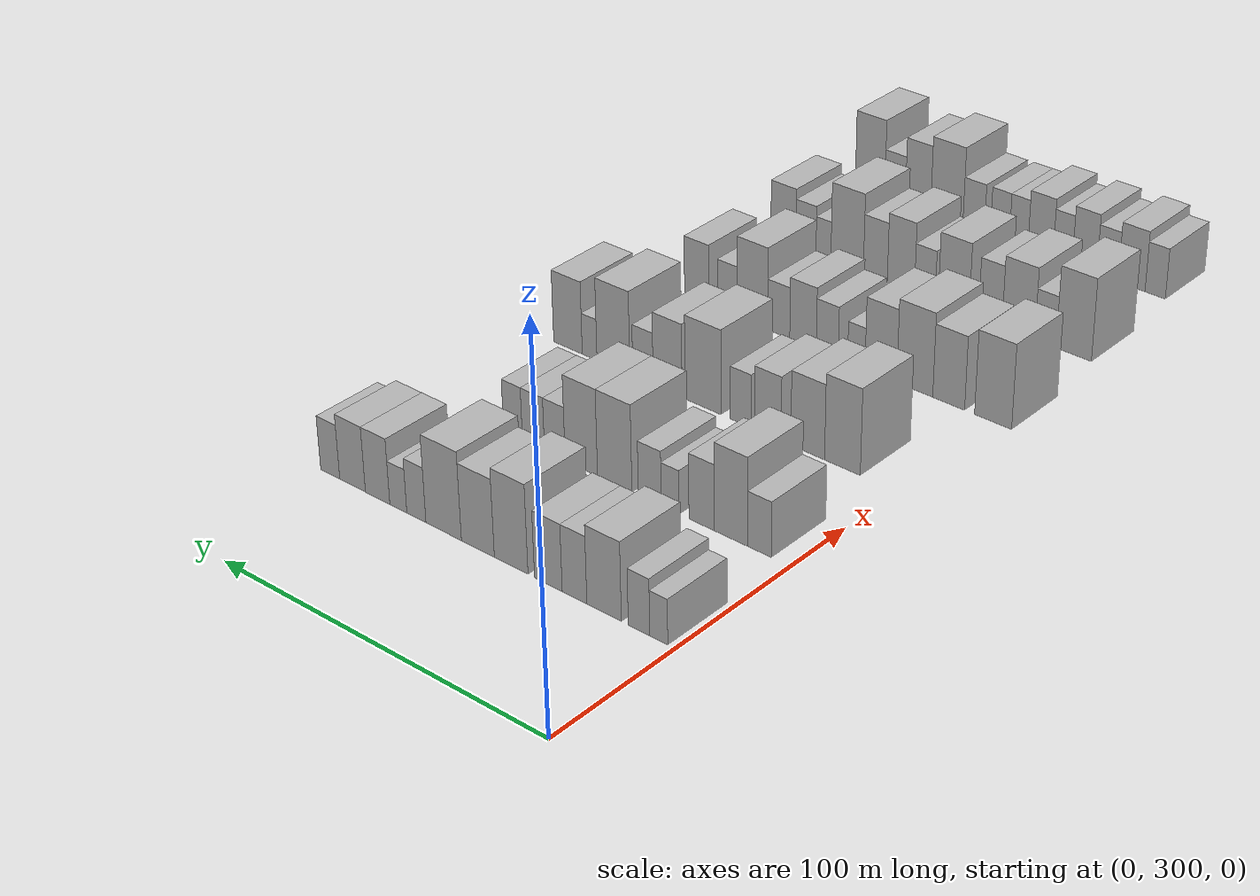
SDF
<sdf version="1.6">
 <world name="default">
  <model name="building_101">
   <static>1</static>
   <pose>50.0000 304.7774 0 0.000000 0.000000 0.000000</pose>
   <link name="link">
    <pose>0 0 6.00 0 0 0</pose>
    <collision name="collision"><geometry><box><size>20.0000 5.1598 12.0000</size></box></geometry></collision>
    <visual name="visual">
     <cast_shadows>0</cast_shadows>
     <geometry><box><size>20.0000 5.1598 12.0000</size></box></geometry>
     <material>
      <script>
       <uri>model://HANNAS_wall/materials/scripts</uri>
       <uri>model://HANNAS_wall/materials/textures</uri>
       <name>vrc/HANNAS_wall</name>
      </script>
     </material>
    </visual>
   </link>
  </model>
  <model name="building_102">
   <static>1</static>
   <pose>50.0000 310.4714 0 0.000000 0.000000 0.000000</pose>
   <link name="link">
    <pose>0 0 7.50 0 0 0</pose>
    <collision name="collision"><geometry><box><size>20.0000 6.2281 15.0000</size></box></geometry></collision>
    <visual name="visual">
     <cast_shadows>0</cast_shadows>
     <geometry><box><size>20.0000 6.2281 15.0000</size></box></geometry>
     <material>
      <script>
       <uri>model://HANNAS_wall/materials/scripts</uri>
       <uri>model://HANNAS_wall/materials/textures</uri>
       <name>vrc/HANNAS_wall</name>
      </script>
     </material>
    </visual>
   </link>
  </model>
  <model name="building_103">
   <static>1</static>
   <pose>50.0000 320.6744 0 0.000000 0.000000 0.000000</pose>
   <link name="link">
    <pose>0 0 10.50 0 0 0</pose>
    <collision name="collision"><geometry><box><size>20.0000 10.1779 21.0000</size></box></geometry></collision>
    <visual name="visual">
     <cast_shadows>0</cast_shadows>
     <geometry><box><size>20.0000 10.1779 21.0000</size></box></geometry>
     <material>
      <script>
       <uri>model://HANNAS_wall/materials/scripts</uri>
       <uri>model://HANNAS_wall/materials/textures</uri>
       <name>vrc/HANNAS_wall</name>
      </script>
     </material>
    </visual>
   </link>
  </model>
  <model name="building_104">
   <static>1</static>
   <pose>50.0000 329.4611 0 0.000000 0.000000 0.000000</pose>
   <link name="link">
    <pose>0 0 9.00 0 0 0</pose>
    <collision name="collision"><geometry><box><size>20.0000 7.3956 18.0000</size></box></geometry></collision>
    <visual name="visual">
     <cast_shadows>0</cast_shadows>
     <geometry><box><size>20.0000 7.3956 18.0000</size></box></geometry>
     <material>
      <script>
       <uri>model://HANNAS_wall/materials/scripts</uri>
       <uri>model://HANNAS_wall/materials/textures</uri>
       <name>vrc/HANNAS_wall</name>
      </script>
     </material>
    </visual>
   </link>
  </model>
  <model name="building_105">
   <static>1</static>
   <pose>50.0000 337.3727 0 0.000000 0.000000 0.000000</pose>
   <link name="link">
    <pose>0 0 9.00 0 0 0</pose>
    <collision name="collision"><geometry><box><size>20.0000 8.4275 18.0000</size></box></geometry></collision>
    <visual name="visual">
     <cast_shadows>0</cast_shadows>
     <geometry><box><size>20.0000 8.4275 18.0000</size></box></geometry>
     <material>
      <script>
       <uri>model://HANNAS_wall/materials/scripts</uri>
       <uri>model://HANNAS_wall/materials/textures</uri>
       <name>vrc/HANNAS_wall</name>
      </script>
     </material>
    </visual>
   </link>
  </model>
  <model name="building_106">
   <static>1</static>
   <pose>50.0000 348.8164 0 0.000000 0.000000 0.000000</pose>
   <link name="link">
    <pose>0 0 12.00 0 0 0</pose>
    <collision name="collision"><geometry><box><size>20.0000 10.4598 24.0000</size></box></geometry></collision>
    <visual name="visual">
     <cast_shadows>0</cast_shadows>
     <geometry><box><size>20.0000 10.4598 24.0000</size></box></geometry>
     <material>
      <script>
       <uri>model://HANNAS_wall/materials/scripts</uri>
       <uri>model://HANNAS_wall/materials/textures</uri>
       <name>vrc/HANNAS_wall</name>
      </script>
     </material>
    </visual>
   </link>
  </model>
  <model name="building_107">
   <static>1</static>
   <pose>50.0000 359.2651 0 0.000000 0.000000 0.000000</pose>
   <link name="link">
    <pose>0 0 10.50 0 0 0</pose>
    <collision name="collision"><geometry><box><size>20.0000 10.4377 21.0000</size></box></geometry></collision>
    <visual name="visual">
     <cast_shadows>0</cast_shadows>
     <geometry><box><size>20.0000 10.4377 21.0000</size></box></geometry>
     <material>
      <script>
       <uri>model://HANNAS_wall/materials/scripts</uri>
       <uri>model://HANNAS_wall/materials/textures</uri>
       <name>vrc/HANNAS_wall</name>
      </script>
     </material>
    </visual>
   </link>
  </model>
  <model name="building_108">
   <static>1</static>
   <pose>50.0000 370.2197 0 0.000000 0.000000 0.000000</pose>
   <link name="link">
    <pose>0 0 12.00 0 0 0</pose>
    <collision name="collision"><geometry><box><size>20.0000 11.4715 24.0000</size></box></geometry></collision>
    <visual name="visual">
     <cast_shadows>0</cast_shadows>
     <geometry><box><size>20.0000 11.4715 24.0000</size></box></geometry>
     <material>
      <script>
       <uri>model://HANNAS_wall/materials/scripts</uri>
       <uri>model://HANNAS_wall/materials/textures</uri>
       <name>vrc/HANNAS_wall</name>
      </script>
     </material>
    </visual>
   </link>
  </model>
  <model name="building_109">
   <static>1</static>
   <pose>50.0000 379.0863 0 0.000000 0.000000 0.000000</pose>
   <link name="link">
    <pose>0 0 7.50 0 0 0</pose>
    <collision name="collision"><geometry><box><size>20.0000 6.2616 15.0000</size></box></geometry></collision>
    <visual name="visual">
     <cast_shadows>0</cast_shadows>
     <geometry><box><size>20.0000 6.2616 15.0000</size></box></geometry>
     <material>
      <script>
       <uri>model://HANNAS_wall/materials/scripts</uri>
       <uri>model://HANNAS_wall/materials/textures</uri>
       <name>vrc/HANNAS_wall</name>
      </script>
     </material>
    </visual>
   </link>
  </model>
  <model name="building_110">
   <static>1</static>
   <pose>50.0000 385.0324 0 0.000000 0.000000 0.000000</pose>
   <link name="link">
    <pose>0 0 6.00 0 0 0</pose>
    <collision name="collision"><geometry><box><size>20.0000 5.6307 12.0000</size></box></geometry></collision>
    <visual name="visual">
     <cast_shadows>0</cast_shadows>
     <geometry><box><size>20.0000 5.6307 12.0000</size></box></geometry>
     <material>
      <script>
       <uri>model://HANNAS_wall/materials/scripts</uri>
       <uri>model://HANNAS_wall/materials/textures</uri>
       <name>vrc/HANNAS_wall</name>
      </script>
     </material>
    </visual>
   </link>
  </model>
  <model name="building_111">
   <static>1</static>
   <pose>50.0000 391.9464 0 0.000000 0.000000 0.000000</pose>
   <link name="link">
    <pose>0 0 9.00 0 0 0</pose>
    <collision name="collision"><geometry><box><size>20.0000 8.1974 18.0000</size></box></geometry></collision>
    <visual name="visual">
     <cast_shadows>0</cast_shadows>
     <geometry><box><size>20.0000 8.1974 18.0000</size></box></geometry>
     <material>
      <script>
       <uri>model://HANNAS_wall/materials/scripts</uri>
       <uri>model://HANNAS_wall/materials/textures</uri>
       <name>vrc/HANNAS_wall</name>
      </script>
     </material>
    </visual>
   </link>
  </model>
  <model name="building_112">
   <static>1</static>
   <pose>50.0000 400.4162 0 0.000000 0.000000 0.000000</pose>
   <link name="link">
    <pose>0 0 9.00 0 0 0</pose>
    <collision name="collision"><geometry><box><size>20.0000 8.7420 18.0000</size></box></geometry></collision>
    <visual name="visual">
     <cast_shadows>0</cast_shadows>
     <geometry><box><size>20.0000 8.7420 18.0000</size></box></geometry>
     <material>
      <script>
       <uri>model://HANNAS_wall/materials/scripts</uri>
       <uri>model://HANNAS_wall/materials/textures</uri>
       <name>vrc/HANNAS_wall</name>
      </script>
     </material>
    </visual>
   </link>
  </model>
  <model name="building_113">
   <static>1</static>
   <pose>50.0000 408.0603 0 0.000000 0.000000 0.000000</pose>
   <link name="link">
    <pose>0 0 7.50 0 0 0</pose>
    <collision name="collision"><geometry><box><size>20.0000 6.5462 15.0000</size></box></geometry></collision>
    <visual name="visual">
     <cast_shadows>0</cast_shadows>
     <geometry><box><size>20.0000 6.5462 15.0000</size></box></geometry>
     <material>
      <script>
       <uri>model://HANNAS_wall/materials/scripts</uri>
       <uri>model://HANNAS_wall/materials/textures</uri>
       <name>vrc/HANNAS_wall</name>
      </script>
     </material>
    </visual>
   </link>
  </model>
  <model name="building_247">
   <static>1</static>
   <pose>90.0000 309.2190 0 0.000000 0.000000 0.000000</pose>
   <link name="link">
    <pose>0 0 7.50 0 0 0</pose>
    <collision name="collision"><geometry><box><size>20.0000 6.9966 15.0000</size></box></geometry></collision>
    <visual name="visual">
     <cast_shadows>0</cast_shadows>
     <geometry><box><size>20.0000 6.9966 15.0000</size></box></geometry>
     <material>
      <script>
       <uri>model://HANNAS_wall/materials/scripts</uri>
       <uri>model://HANNAS_wall/materials/textures</uri>
       <name>vrc/HANNAS_wall</name>
      </script>
     </material>
    </visual>
   </link>
  </model>
  <model name="building_248">
   <static>1</static>
   <pose>90.0000 317.6455 0 0.000000 0.000000 0.000000</pose>
   <link name="link">
    <pose>0 0 12.00 0 0 0</pose>
    <collision name="collision"><geometry><box><size>20.0000 9.8564 24.0000</size></box></geometry></collision>
    <visual name="visual">
     <cast_shadows>0</cast_shadows>
     <geometry><box><size>20.0000 9.8564 24.0000</size></box></geometry>
     <material>
      <script>
       <uri>model://HANNAS_wall/materials/scripts</uri>
       <uri>model://HANNAS_wall/materials/textures</uri>
       <name>vrc/HANNAS_wall</name>
      </script>
     </material>
    </visual>
   </link>
  </model>
  <model name="building_249">
   <static>1</static>
   <pose>90.0000 326.4038 0 0.000000 0.000000 0.000000</pose>
   <link name="link">
    <pose>0 0 9.00 0 0 0</pose>
    <collision name="collision"><geometry><box><size>20.0000 7.6602 18.0000</size></box></geometry></collision>
    <visual name="visual">
     <cast_shadows>0</cast_shadows>
     <geometry><box><size>20.0000 7.6602 18.0000</size></box></geometry>
     <material>
      <script>
       <uri>model://HANNAS_wall/materials/scripts</uri>
       <uri>model://HANNAS_wall/materials/textures</uri>
       <name>vrc/HANNAS_wall</name>
      </script>
     </material>
    </visual>
   </link>
  </model>
  <model name="building_250">
   <static>1</static>
   <pose>90.0000 335.9796 0 0.000000 0.000000 0.000000</pose>
   <link name="link">
    <pose>0 0 6.00 0 0 0</pose>
    <collision name="collision"><geometry><box><size>20.0000 5.4913 12.0000</size></box></geometry></collision>
    <visual name="visual">
     <cast_shadows>0</cast_shadows>
     <geometry><box><size>20.0000 5.4913 12.0000</size></box></geometry>
     <material>
      <script>
       <uri>model://HANNAS_wall/materials/scripts</uri>
       <uri>model://HANNAS_wall/materials/textures</uri>
       <name>vrc/HANNAS_wall</name>
      </script>
     </material>
    </visual>
   </link>
  </model>
  <model name="building_251">
   <static>1</static>
   <pose>90.0000 342.2783 0 0.000000 0.000000 0.000000</pose>
   <link name="link">
    <pose>0 0 7.50 0 0 0</pose>
    <collision name="collision"><geometry><box><size>20.0000 7.1061 15.0000</size></box></geometry></collision>
    <visual name="visual">
     <cast_shadows>0</cast_shadows>
     <geometry><box><size>20.0000 7.1061 15.0000</size></box></geometry>
     <material>
      <script>
       <uri>model://HANNAS_wall/materials/scripts</uri>
       <uri>model://HANNAS_wall/materials/textures</uri>
       <name>vrc/HANNAS_wall</name>
      </script>
     </material>
    </visual>
   </link>
  </model>
  <model name="building_252">
   <static>1</static>
   <pose>90.0000 353.2754 0 0.000000 0.000000 0.000000</pose>
   <link name="link">
    <pose>0 0 12.00 0 0 0</pose>
    <collision name="collision"><geometry><box><size>20.0000 10.8881 24.0000</size></box></geometry></collision>
    <visual name="visual">
     <cast_shadows>0</cast_shadows>
     <geometry><box><size>20.0000 10.8881 24.0000</size></box></geometry>
     <material>
      <script>
       <uri>model://HANNAS_wall/materials/scripts</uri>
       <uri>model://HANNAS_wall/materials/textures</uri>
       <name>vrc/HANNAS_wall</name>
      </script>
     </material>
    </visual>
   </link>
  </model>
  <model name="building_253">
   <static>1</static>
   <pose>90.0000 363.9347 0 0.000000 0.000000 0.000000</pose>
   <link name="link">
    <pose>0 0 12.00 0 0 0</pose>
    <collision name="collision"><geometry><box><size>20.0000 10.4305 24.0000</size></box></geometry></collision>
    <visual name="visual">
     <cast_shadows>0</cast_shadows>
     <geometry><box><size>20.0000 10.4305 24.0000</size></box></geometry>
     <material>
      <script>
       <uri>model://HANNAS_wall/materials/scripts</uri>
       <uri>model://HANNAS_wall/materials/textures</uri>
       <name>vrc/HANNAS_wall</name>
      </script>
     </material>
    </visual>
   </link>
  </model>
  <model name="building_254">
   <static>1</static>
   <pose>90.0000 372.5247 0 0.000000 0.000000 0.000000</pose>
   <link name="link">
    <pose>0 0 7.50 0 0 0</pose>
    <collision name="collision"><geometry><box><size>20.0000 6.7496 15.0000</size></box></geometry></collision>
    <visual name="visual">
     <cast_shadows>0</cast_shadows>
     <geometry><box><size>20.0000 6.7496 15.0000</size></box></geometry>
     <material>
      <script>
       <uri>model://HANNAS_wall/materials/scripts</uri>
       <uri>model://HANNAS_wall/materials/textures</uri>
       <name>vrc/HANNAS_wall</name>
      </script>
     </material>
    </visual>
   </link>
  </model>
  <model name="building_255">
   <static>1</static>
   <pose>90.0000 379.5529 0 0.000000 0.000000 0.000000</pose>
   <link name="link">
    <pose>0 0 7.50 0 0 0</pose>
    <collision name="collision"><geometry><box><size>20.0000 7.3069 15.0000</size></box></geometry></collision>
    <visual name="visual">
     <cast_shadows>0</cast_shadows>
     <geometry><box><size>20.0000 7.3069 15.0000</size></box></geometry>
     <material>
      <script>
       <uri>model://HANNAS_wall/materials/scripts</uri>
       <uri>model://HANNAS_wall/materials/textures</uri>
       <name>vrc/HANNAS_wall</name>
      </script>
     </material>
    </visual>
   </link>
  </model>
  <model name="building_256">
   <static>1</static>
   <pose>90.0000 386.3377 0 0.000000 0.000000 0.000000</pose>
   <link name="link">
    <pose>0 0 7.50 0 0 0</pose>
    <collision name="collision"><geometry><box><size>20.0000 6.2625 15.0000</size></box></geometry></collision>
    <visual name="visual">
     <cast_shadows>0</cast_shadows>
     <geometry><box><size>20.0000 6.2625 15.0000</size></box></geometry>
     <material>
      <script>
       <uri>model://HANNAS_wall/materials/scripts</uri>
       <uri>model://HANNAS_wall/materials/textures</uri>
       <name>vrc/HANNAS_wall</name>
      </script>
     </material>
    </visual>
   </link>
  </model>
  <model name="building_383">
   <static>1</static>
   <pose>130.0000 316.2527 0 0.000000 0.000000 0.000000</pose>
   <link name="link">
    <pose>0 0 12.00 0 0 0</pose>
    <collision name="collision"><geometry><box><size>20.0000 10.7539 24.0000</size></box></geometry></collision>
    <visual name="visual">
     <cast_shadows>0</cast_shadows>
     <geometry><box><size>20.0000 10.7539 24.0000</size></box></geometry>
     <material>
      <script>
       <uri>model://HANNAS_wall/materials/scripts</uri>
       <uri>model://HANNAS_wall/materials/textures</uri>
       <name>vrc/HANNAS_wall</name>
      </script>
     </material>
    </visual>
   </link>
  </model>
  <model name="building_384">
   <static>1</static>
   <pose>130.0000 326.7931 0 0.000000 0.000000 0.000000</pose>
   <link name="link">
    <pose>0 0 10.50 0 0 0</pose>
    <collision name="collision"><geometry><box><size>20.0000 10.3268 21.0000</size></box></geometry></collision>
    <visual name="visual">
     <cast_shadows>0</cast_shadows>
     <geometry><box><size>20.0000 10.3268 21.0000</size></box></geometry>
     <material>
      <script>
       <uri>model://HANNAS_wall/materials/scripts</uri>
       <uri>model://HANNAS_wall/materials/textures</uri>
       <name>vrc/HANNAS_wall</name>
      </script>
     </material>
    </visual>
   </link>
  </model>
  <model name="building_385">
   <static>1</static>
   <pose>130.0000 339.1245 0 0.000000 0.000000 0.000000</pose>
   <link name="link">
    <pose>0 0 9.00 0 0 0</pose>
    <collision name="collision"><geometry><box><size>20.0000 8.3360 18.0000</size></box></geometry></collision>
    <visual name="visual">
     <cast_shadows>0</cast_shadows>
     <geometry><box><size>20.0000 8.3360 18.0000</size></box></geometry>
     <material>
      <script>
       <uri>model://HANNAS_wall/materials/scripts</uri>
       <uri>model://HANNAS_wall/materials/textures</uri>
       <name>vrc/HANNAS_wall</name>
      </script>
     </material>
    </visual>
   </link>
  </model>
  <model name="building_386">
   <static>1</static>
   <pose>130.0000 347.6137 0 0.000000 0.000000 0.000000</pose>
   <link name="link">
    <pose>0 0 7.50 0 0 0</pose>
    <collision name="collision"><geometry><box><size>20.0000 6.6423 15.0000</size></box></geometry></collision>
    <visual name="visual">
     <cast_shadows>0</cast_shadows>
     <geometry><box><size>20.0000 6.6423 15.0000</size></box></geometry>
     <material>
      <script>
       <uri>model://HANNAS_wall/materials/scripts</uri>
       <uri>model://HANNAS_wall/materials/textures</uri>
       <name>vrc/HANNAS_wall</name>
      </script>
     </material>
    </visual>
   </link>
  </model>
  <model name="building_387">
   <static>1</static>
   <pose>130.0000 359.7267 0 0.000000 0.000000 0.000000</pose>
   <link name="link">
    <pose>0 0 12.00 0 0 0</pose>
    <collision name="collision"><geometry><box><size>20.0000 11.5838 24.0000</size></box></geometry></collision>
    <visual name="visual">
     <cast_shadows>0</cast_shadows>
     <geometry><box><size>20.0000 11.5838 24.0000</size></box></geometry>
     <material>
      <script>
       <uri>model://HANNAS_wall/materials/scripts</uri>
       <uri>model://HANNAS_wall/materials/textures</uri>
       <name>vrc/HANNAS_wall</name>
      </script>
     </material>
    </visual>
   </link>
  </model>
  <model name="building_388">
   <static>1</static>
   <pose>130.0000 371.2873 0 0.000000 0.000000 0.000000</pose>
   <link name="link">
    <pose>0 0 10.50 0 0 0</pose>
    <collision name="collision"><geometry><box><size>20.0000 9.5373 21.0000</size></box></geometry></collision>
    <visual name="visual">
     <cast_shadows>0</cast_shadows>
     <geometry><box><size>20.0000 9.5373 21.0000</size></box></geometry>
     <material>
      <script>
       <uri>model://HANNAS_wall/materials/scripts</uri>
       <uri>model://HANNAS_wall/materials/textures</uri>
       <name>vrc/HANNAS_wall</name>
      </script>
     </material>
    </visual>
   </link>
  </model>
  <model name="building_389">
   <static>1</static>
   <pose>130.0000 379.4448 0 0.000000 0.000000 0.000000</pose>
   <link name="link">
    <pose>0 0 7.50 0 0 0</pose>
    <collision name="collision"><geometry><box><size>20.0000 6.7777 15.0000</size></box></geometry></collision>
    <visual name="visual">
     <cast_shadows>0</cast_shadows>
     <geometry><box><size>20.0000 6.7777 15.0000</size></box></geometry>
     <material>
      <script>
       <uri>model://HANNAS_wall/materials/scripts</uri>
       <uri>model://HANNAS_wall/materials/textures</uri>
       <name>vrc/HANNAS_wall</name>
      </script>
     </material>
    </visual>
   </link>
  </model>
  <model name="building_390">
   <static>1</static>
   <pose>130.0000 389.4282 0 0.000000 0.000000 0.000000</pose>
   <link name="link">
    <pose>0 0 12.00 0 0 0</pose>
    <collision name="collision"><geometry><box><size>20.0000 11.1891 24.0000</size></box></geometry></collision>
    <visual name="visual">
     <cast_shadows>0</cast_shadows>
     <geometry><box><size>20.0000 11.1891 24.0000</size></box></geometry>
     <material>
      <script>
       <uri>model://HANNAS_wall/materials/scripts</uri>
       <uri>model://HANNAS_wall/materials/textures</uri>
       <name>vrc/HANNAS_wall</name>
      </script>
     </material>
    </visual>
   </link>
  </model>
  <model name="building_391">
   <static>1</static>
   <pose>130.0000 397.5578 0 0.000000 0.000000 0.000000</pose>
   <link name="link">
    <pose>0 0 6.00 0 0 0</pose>
    <collision name="collision"><geometry><box><size>20.0000 5.0701 12.0000</size></box></geometry></collision>
    <visual name="visual">
     <cast_shadows>0</cast_shadows>
     <geometry><box><size>20.0000 5.0701 12.0000</size></box></geometry>
     <material>
      <script>
       <uri>model://HANNAS_wall/materials/scripts</uri>
       <uri>model://HANNAS_wall/materials/textures</uri>
       <name>vrc/HANNAS_wall</name>
      </script>
     </material>
    </visual>
   </link>
  </model>
  <model name="building_392">
   <static>1</static>
   <pose>130.0000 405.0522 0 0.000000 0.000000 0.000000</pose>
   <link name="link">
    <pose>0 0 10.50 0 0 0</pose>
    <collision name="collision"><geometry><box><size>20.0000 9.9187 21.0000</size></box></geometry></collision>
    <visual name="visual">
     <cast_shadows>0</cast_shadows>
     <geometry><box><size>20.0000 9.9187 21.0000</size></box></geometry>
     <material>
      <script>
       <uri>model://HANNAS_wall/materials/scripts</uri>
       <uri>model://HANNAS_wall/materials/textures</uri>
       <name>vrc/HANNAS_wall</name>
      </script>
     </material>
    </visual>
   </link>
  </model>
  <model name="building_515">
   <static>1</static>
   <pose>170.0000 300.4382 0 0.000000 0.000000 0.000000</pose>
   <link name="link">
    <pose>0 0 12.00 0 0 0</pose>
    <collision name="collision"><geometry><box><size>20.0000 11.0217 24.0000</size></box></geometry></collision>
    <visual name="visual">
     <cast_shadows>0</cast_shadows>
     <geometry><box><size>20.0000 11.0217 24.0000</size></box></geometry>
     <material>
      <script>
       <uri>model://HANNAS_wall/materials/scripts</uri>
       <uri>model://HANNAS_wall/materials/textures</uri>
       <name>vrc/HANNAS_wall</name>
      </script>
     </material>
    </visual>
   </link>
  </model>
  <model name="building_516">
   <static>1</static>
   <pose>170.0000 313.7992 0 0.000000 0.000000 0.000000</pose>
   <link name="link">
    <pose>0 0 10.50 0 0 0</pose>
    <collision name="collision"><geometry><box><size>20.0000 9.7004 21.0000</size></box></geometry></collision>
    <visual name="visual">
     <cast_shadows>0</cast_shadows>
     <geometry><box><size>20.0000 9.7004 21.0000</size></box></geometry>
     <material>
      <script>
       <uri>model://HANNAS_wall/materials/scripts</uri>
       <uri>model://HANNAS_wall/materials/textures</uri>
       <name>vrc/HANNAS_wall</name>
      </script>
     </material>
    </visual>
   </link>
  </model>
  <model name="building_517">
   <static>1</static>
   <pose>170.0000 324.2202 0 0.000000 0.000000 0.000000</pose>
   <link name="link">
    <pose>0 0 12.00 0 0 0</pose>
    <collision name="collision"><geometry><box><size>20.0000 11.1415 24.0000</size></box></geometry></collision>
    <visual name="visual">
     <cast_shadows>0</cast_shadows>
     <geometry><box><size>20.0000 11.1415 24.0000</size></box></geometry>
     <material>
      <script>
       <uri>model://HANNAS_wall/materials/scripts</uri>
       <uri>model://HANNAS_wall/materials/textures</uri>
       <name>vrc/HANNAS_wall</name>
      </script>
     </material>
    </visual>
   </link>
  </model>
  <model name="building_518">
   <static>1</static>
   <pose>170.0000 334.7910 0 0.000000 0.000000 0.000000</pose>
   <link name="link">
    <pose>0 0 10.50 0 0 0</pose>
    <collision name="collision"><geometry><box><size>20.0000 10.0001 21.0000</size></box></geometry></collision>
    <visual name="visual">
     <cast_shadows>0</cast_shadows>
     <geometry><box><size>20.0000 10.0001 21.0000</size></box></geometry>
     <material>
      <script>
       <uri>model://HANNAS_wall/materials/scripts</uri>
       <uri>model://HANNAS_wall/materials/textures</uri>
       <name>vrc/HANNAS_wall</name>
      </script>
     </material>
    </visual>
   </link>
  </model>
  <model name="building_519">
   <static>1</static>
   <pose>170.0000 342.5634 0 0.000000 0.000000 0.000000</pose>
   <link name="link">
    <pose>0 0 6.00 0 0 0</pose>
    <collision name="collision"><geometry><box><size>20.0000 5.5448 12.0000</size></box></geometry></collision>
    <visual name="visual">
     <cast_shadows>0</cast_shadows>
     <geometry><box><size>20.0000 5.5448 12.0000</size></box></geometry>
     <material>
      <script>
       <uri>model://HANNAS_wall/materials/scripts</uri>
       <uri>model://HANNAS_wall/materials/textures</uri>
       <name>vrc/HANNAS_wall</name>
      </script>
     </material>
    </visual>
   </link>
  </model>
  <model name="building_520">
   <static>1</static>
   <pose>170.0000 351.8970 0 0.000000 0.000000 0.000000</pose>
   <link name="link">
    <pose>0 0 7.50 0 0 0</pose>
    <collision name="collision"><geometry><box><size>20.0000 7.1225 15.0000</size></box></geometry></collision>
    <visual name="visual">
     <cast_shadows>0</cast_shadows>
     <geometry><box><size>20.0000 7.1225 15.0000</size></box></geometry>
     <material>
      <script>
       <uri>model://HANNAS_wall/materials/scripts</uri>
       <uri>model://HANNAS_wall/materials/textures</uri>
       <name>vrc/HANNAS_wall</name>
      </script>
     </material>
    </visual>
   </link>
  </model>
  <model name="building_521">
   <static>1</static>
   <pose>170.0000 359.7985 0 0.000000 0.000000 0.000000</pose>
   <link name="link">
    <pose>0 0 9.00 0 0 0</pose>
    <collision name="collision"><geometry><box><size>20.0000 8.6806 18.0000</size></box></geometry></collision>
    <visual name="visual">
     <cast_shadows>0</cast_shadows>
     <geometry><box><size>20.0000 8.6806 18.0000</size></box></geometry>
     <material>
      <script>
       <uri>model://HANNAS_wall/materials/scripts</uri>
       <uri>model://HANNAS_wall/materials/textures</uri>
       <name>vrc/HANNAS_wall</name>
      </script>
     </material>
    </visual>
   </link>
  </model>
  <model name="building_522">
   <static>1</static>
   <pose>170.0000 367.8183 0 0.000000 0.000000 0.000000</pose>
   <link name="link">
    <pose>0 0 7.50 0 0 0</pose>
    <collision name="collision"><geometry><box><size>20.0000 7.3589 15.0000</size></box></geometry></collision>
    <visual name="visual">
     <cast_shadows>0</cast_shadows>
     <geometry><box><size>20.0000 7.3589 15.0000</size></box></geometry>
     <material>
      <script>
       <uri>model://HANNAS_wall/materials/scripts</uri>
       <uri>model://HANNAS_wall/materials/textures</uri>
       <name>vrc/HANNAS_wall</name>
      </script>
     </material>
    </visual>
   </link>
  </model>
  <model name="building_523">
   <static>1</static>
   <pose>170.0000 376.5930 0 0.000000 0.000000 0.000000</pose>
   <link name="link">
    <pose>0 0 12.00 0 0 0</pose>
    <collision name="collision"><geometry><box><size>20.0000 10.1907 24.0000</size></box></geometry></collision>
    <visual name="visual">
     <cast_shadows>0</cast_shadows>
     <geometry><box><size>20.0000 10.1907 24.0000</size></box></geometry>
     <material>
      <script>
       <uri>model://HANNAS_wall/materials/scripts</uri>
       <uri>model://HANNAS_wall/materials/textures</uri>
       <name>vrc/HANNAS_wall</name>
      </script>
     </material>
    </visual>
   </link>
  </model>
  <model name="building_524">
   <static>1</static>
   <pose>170.0000 385.0756 0 0.000000 0.000000 0.000000</pose>
   <link name="link">
    <pose>0 0 7.50 0 0 0</pose>
    <collision name="collision"><geometry><box><size>20.0000 6.7744 15.0000</size></box></geometry></collision>
    <visual name="visual">
     <cast_shadows>0</cast_shadows>
     <geometry><box><size>20.0000 6.7744 15.0000</size></box></geometry>
     <material>
      <script>
       <uri>model://HANNAS_wall/materials/scripts</uri>
       <uri>model://HANNAS_wall/materials/textures</uri>
       <name>vrc/HANNAS_wall</name>
      </script>
     </material>
    </visual>
   </link>
  </model>
  <model name="building_525">
   <static>1</static>
   <pose>170.0000 395.6381 0 0.000000 0.000000 0.000000</pose>
   <link name="link">
    <pose>0 0 9.00 0 0 0</pose>
    <collision name="collision"><geometry><box><size>20.0000 8.3505 18.0000</size></box></geometry></collision>
    <visual name="visual">
     <cast_shadows>0</cast_shadows>
     <geometry><box><size>20.0000 8.3505 18.0000</size></box></geometry>
     <material>
      <script>
       <uri>model://HANNAS_wall/materials/scripts</uri>
       <uri>model://HANNAS_wall/materials/textures</uri>
       <name>vrc/HANNAS_wall</name>
      </script>
     </material>
    </visual>
   </link>
  </model>
  <model name="building_653">
   <static>1</static>
   <pose>210.0000 303.2432 0 0.000000 0.000000 0.000000</pose>
   <link name="link">
    <pose>0 0 12.00 0 0 0</pose>
    <collision name="collision"><geometry><box><size>20.0000 10.7940 24.0000</size></box></geometry></collision>
    <visual name="visual">
     <cast_shadows>0</cast_shadows>
     <geometry><box><size>20.0000 10.7940 24.0000</size></box></geometry>
     <material>
      <script>
       <uri>model://HANNAS_wall/materials/scripts</uri>
       <uri>model://HANNAS_wall/materials/textures</uri>
       <name>vrc/HANNAS_wall</name>
      </script>
     </material>
    </visual>
   </link>
  </model>
  <model name="building_654">
   <static>1</static>
   <pose>210.0000 311.9131 0 0.000000 0.000000 0.000000</pose>
   <link name="link">
    <pose>0 0 7.50 0 0 0</pose>
    <collision name="collision"><geometry><box><size>20.0000 6.5458 15.0000</size></box></geometry></collision>
    <visual name="visual">
     <cast_shadows>0</cast_shadows>
     <geometry><box><size>20.0000 6.5458 15.0000</size></box></geometry>
     <material>
      <script>
       <uri>model://HANNAS_wall/materials/scripts</uri>
       <uri>model://HANNAS_wall/materials/textures</uri>
       <name>vrc/HANNAS_wall</name>
      </script>
     </material>
    </visual>
   </link>
  </model>
  <model name="building_655">
   <static>1</static>
   <pose>210.0000 320.2994 0 0.000000 0.000000 0.000000</pose>
   <link name="link">
    <pose>0 0 10.50 0 0 0</pose>
    <collision name="collision"><geometry><box><size>20.0000 10.2268 21.0000</size></box></geometry></collision>
    <visual name="visual">
     <cast_shadows>0</cast_shadows>
     <geometry><box><size>20.0000 10.2268 21.0000</size></box></geometry>
     <material>
      <script>
       <uri>model://HANNAS_wall/materials/scripts</uri>
       <uri>model://HANNAS_wall/materials/textures</uri>
       <name>vrc/HANNAS_wall</name>
      </script>
     </material>
    </visual>
   </link>
  </model>
  <model name="building_656">
   <static>1</static>
   <pose>210.0000 329.1432 0 0.000000 0.000000 0.000000</pose>
   <link name="link">
    <pose>0 0 9.00 0 0 0</pose>
    <collision name="collision"><geometry><box><size>20.0000 7.4607 18.0000</size></box></geometry></collision>
    <visual name="visual">
     <cast_shadows>0</cast_shadows>
     <geometry><box><size>20.0000 7.4607 18.0000</size></box></geometry>
     <material>
      <script>
       <uri>model://HANNAS_wall/materials/scripts</uri>
       <uri>model://HANNAS_wall/materials/textures</uri>
       <name>vrc/HANNAS_wall</name>
      </script>
     </material>
    </visual>
   </link>
  </model>
  <model name="building_657">
   <static>1</static>
   <pose>210.0000 340.8614 0 0.000000 0.000000 0.000000</pose>
   <link name="link">
    <pose>0 0 10.50 0 0 0</pose>
    <collision name="collision"><geometry><box><size>20.0000 9.9758 21.0000</size></box></geometry></collision>
    <visual name="visual">
     <cast_shadows>0</cast_shadows>
     <geometry><box><size>20.0000 9.9758 21.0000</size></box></geometry>
     <material>
      <script>
       <uri>model://HANNAS_wall/materials/scripts</uri>
       <uri>model://HANNAS_wall/materials/textures</uri>
       <name>vrc/HANNAS_wall</name>
      </script>
     </material>
    </visual>
   </link>
  </model>
  <model name="building_658">
   <static>1</static>
   <pose>210.0000 350.2354 0 0.000000 0.000000 0.000000</pose>
   <link name="link">
    <pose>0 0 7.50 0 0 0</pose>
    <collision name="collision"><geometry><box><size>20.0000 6.7720 15.0000</size></box></geometry></collision>
    <visual name="visual">
     <cast_shadows>0</cast_shadows>
     <geometry><box><size>20.0000 6.7720 15.0000</size></box></geometry>
     <material>
      <script>
       <uri>model://HANNAS_wall/materials/scripts</uri>
       <uri>model://HANNAS_wall/materials/textures</uri>
       <name>vrc/HANNAS_wall</name>
      </script>
     </material>
    </visual>
   </link>
  </model>
  <model name="building_659">
   <static>1</static>
   <pose>210.0000 358.1261 0 0.000000 0.000000 0.000000</pose>
   <link name="link">
    <pose>0 0 10.50 0 0 0</pose>
    <collision name="collision"><geometry><box><size>20.0000 9.0095 21.0000</size></box></geometry></collision>
    <visual name="visual">
     <cast_shadows>0</cast_shadows>
     <geometry><box><size>20.0000 9.0095 21.0000</size></box></geometry>
     <material>
      <script>
       <uri>model://HANNAS_wall/materials/scripts</uri>
       <uri>model://HANNAS_wall/materials/textures</uri>
       <name>vrc/HANNAS_wall</name>
      </script>
     </material>
    </visual>
   </link>
  </model>
  <model name="building_660">
   <static>1</static>
   <pose>210.0000 366.6452 0 0.000000 0.000000 0.000000</pose>
   <link name="link">
    <pose>0 0 9.00 0 0 0</pose>
    <collision name="collision"><geometry><box><size>20.0000 8.0287 18.0000</size></box></geometry></collision>
    <visual name="visual">
     <cast_shadows>0</cast_shadows>
     <geometry><box><size>20.0000 8.0287 18.0000</size></box></geometry>
     <material>
      <script>
       <uri>model://HANNAS_wall/materials/scripts</uri>
       <uri>model://HANNAS_wall/materials/textures</uri>
       <name>vrc/HANNAS_wall</name>
      </script>
     </material>
    </visual>
   </link>
  </model>
  <model name="building_661">
   <static>1</static>
   <pose>210.0000 376.1885 0 0.000000 0.000000 0.000000</pose>
   <link name="link">
    <pose>0 0 12.00 0 0 0</pose>
    <collision name="collision"><geometry><box><size>20.0000 11.0579 24.0000</size></box></geometry></collision>
    <visual name="visual">
     <cast_shadows>0</cast_shadows>
     <geometry><box><size>20.0000 11.0579 24.0000</size></box></geometry>
     <material>
      <script>
       <uri>model://HANNAS_wall/materials/scripts</uri>
       <uri>model://HANNAS_wall/materials/textures</uri>
       <name>vrc/HANNAS_wall</name>
      </script>
     </material>
    </visual>
   </link>
  </model>
  <model name="building_662">
   <static>1</static>
   <pose>210.0000 384.2969 0 0.000000 0.000000 0.000000</pose>
   <link name="link">
    <pose>0 0 6.00 0 0 0</pose>
    <collision name="collision"><geometry><box><size>20.0000 5.1589 12.0000</size></box></geometry></collision>
    <visual name="visual">
     <cast_shadows>0</cast_shadows>
     <geometry><box><size>20.0000 5.1589 12.0000</size></box></geometry>
     <material>
      <script>
       <uri>model://HANNAS_wall/materials/scripts</uri>
       <uri>model://HANNAS_wall/materials/textures</uri>
       <name>vrc/HANNAS_wall</name>
      </script>
     </material>
    </visual>
   </link>
  </model>
  <model name="building_663">
   <static>1</static>
   <pose>210.0000 390.3336 0 0.000000 0.000000 0.000000</pose>
   <link name="link">
    <pose>0 0 7.50 0 0 0</pose>
    <collision name="collision"><geometry><box><size>20.0000 6.9145 15.0000</size></box></geometry></collision>
    <visual name="visual">
     <cast_shadows>0</cast_shadows>
     <geometry><box><size>20.0000 6.9145 15.0000</size></box></geometry>
     <material>
      <script>
       <uri>model://HANNAS_wall/materials/scripts</uri>
       <uri>model://HANNAS_wall/materials/textures</uri>
       <name>vrc/HANNAS_wall</name>
      </script>
     </material>
    </visual>
   </link>
  </model>
  <model name="building_664">
   <static>1</static>
   <pose>210.0000 398.2168 0 0.000000 0.000000 0.000000</pose>
   <link name="link">
    <pose>0 0 9.00 0 0 0</pose>
    <collision name="collision"><geometry><box><size>20.0000 8.8519 18.0000</size></box></geometry></collision>
    <visual name="visual">
     <cast_shadows>0</cast_shadows>
     <geometry><box><size>20.0000 8.8519 18.0000</size></box></geometry>
     <material>
      <script>
       <uri>model://HANNAS_wall/materials/scripts</uri>
       <uri>model://HANNAS_wall/materials/textures</uri>
       <name>vrc/HANNAS_wall</name>
      </script>
     </material>
    </visual>
   </link>
  </model>
  <model name="building_789">
   <static>1</static>
   <pose>250.0000 303.7507 0 0.000000 0.000000 0.000000</pose>
   <link name="link">
    <pose>0 0 7.50 0 0 0</pose>
    <collision name="collision"><geometry><box><size>20.0000 6.2943 15.0000</size></box></geometry></collision>
    <visual name="visual">
     <cast_shadows>0</cast_shadows>
     <geometry><box><size>20.0000 6.2943 15.0000</size></box></geometry>
     <material>
      <script>
       <uri>model://HANNAS_wall/materials/scripts</uri>
       <uri>model://HANNAS_wall/materials/textures</uri>
       <name>vrc/HANNAS_wall</name>
      </script>
     </material>
    </visual>
   </link>
  </model>
  <model name="building_790">
   <static>1</static>
   <pose>250.0000 311.1233 0 0.000000 0.000000 0.000000</pose>
   <link name="link">
    <pose>0 0 9.00 0 0 0</pose>
    <collision name="collision"><geometry><box><size>20.0000 8.4510 18.0000</size></box></geometry></collision>
    <visual name="visual">
     <cast_shadows>0</cast_shadows>
     <geometry><box><size>20.0000 8.4510 18.0000</size></box></geometry>
     <material>
      <script>
       <uri>model://HANNAS_wall/materials/scripts</uri>
       <uri>model://HANNAS_wall/materials/textures</uri>
       <name>vrc/HANNAS_wall</name>
      </script>
     </material>
    </visual>
   </link>
  </model>
  <model name="building_791">
   <static>1</static>
   <pose>250.0000 318.7410 0 0.000000 0.000000 0.000000</pose>
   <link name="link">
    <pose>0 0 7.50 0 0 0</pose>
    <collision name="collision"><geometry><box><size>20.0000 6.7842 15.0000</size></box></geometry></collision>
    <visual name="visual">
     <cast_shadows>0</cast_shadows>
     <geometry><box><size>20.0000 6.7842 15.0000</size></box></geometry>
     <material>
      <script>
       <uri>model://HANNAS_wall/materials/scripts</uri>
       <uri>model://HANNAS_wall/materials/textures</uri>
       <name>vrc/HANNAS_wall</name>
      </script>
     </material>
    </visual>
   </link>
  </model>
  <model name="building_792">
   <static>1</static>
   <pose>250.0000 326.0677 0 0.000000 0.000000 0.000000</pose>
   <link name="link">
    <pose>0 0 9.00 0 0 0</pose>
    <collision name="collision"><geometry><box><size>20.0000 7.8692 18.0000</size></box></geometry></collision>
    <visual name="visual">
     <cast_shadows>0</cast_shadows>
     <geometry><box><size>20.0000 7.8692 18.0000</size></box></geometry>
     <material>
      <script>
       <uri>model://HANNAS_wall/materials/scripts</uri>
       <uri>model://HANNAS_wall/materials/textures</uri>
       <name>vrc/HANNAS_wall</name>
      </script>
     </material>
    </visual>
   </link>
  </model>
  <model name="building_793">
   <static>1</static>
   <pose>250.0000 333.1233 0 0.000000 0.000000 0.000000</pose>
   <link name="link">
    <pose>0 0 7.50 0 0 0</pose>
    <collision name="collision"><geometry><box><size>20.0000 6.2421 15.0000</size></box></geometry></collision>
    <visual name="visual">
     <cast_shadows>0</cast_shadows>
     <geometry><box><size>20.0000 6.2421 15.0000</size></box></geometry>
     <material>
      <script>
       <uri>model://HANNAS_wall/materials/scripts</uri>
       <uri>model://HANNAS_wall/materials/textures</uri>
       <name>vrc/HANNAS_wall</name>
      </script>
     </material>
    </visual>
   </link>
  </model>
  <model name="building_794">
   <static>1</static>
   <pose>250.0000 340.3528 0 0.000000 0.000000 0.000000</pose>
   <link name="link">
    <pose>0 0 9.00 0 0 0</pose>
    <collision name="collision"><geometry><box><size>20.0000 8.2169 18.0000</size></box></geometry></collision>
    <visual name="visual">
     <cast_shadows>0</cast_shadows>
     <geometry><box><size>20.0000 8.2169 18.0000</size></box></geometry>
     <material>
      <script>
       <uri>model://HANNAS_wall/materials/scripts</uri>
       <uri>model://HANNAS_wall/materials/textures</uri>
       <name>vrc/HANNAS_wall</name>
      </script>
     </material>
    </visual>
   </link>
  </model>
  <model name="building_795">
   <static>1</static>
   <pose>250.0000 347.5386 0 0.000000 0.000000 0.000000</pose>
   <link name="link">
    <pose>0 0 7.50 0 0 0</pose>
    <collision name="collision"><geometry><box><size>20.0000 6.1547 15.0000</size></box></geometry></collision>
    <visual name="visual">
     <cast_shadows>0</cast_shadows>
     <geometry><box><size>20.0000 6.1547 15.0000</size></box></geometry>
     <material>
      <script>
       <uri>model://HANNAS_wall/materials/scripts</uri>
       <uri>model://HANNAS_wall/materials/textures</uri>
       <name>vrc/HANNAS_wall</name>
      </script>
     </material>
    </visual>
   </link>
  </model>
  <model name="building_796">
   <static>1</static>
   <pose>250.0000 353.7892 0 0.000000 0.000000 0.000000</pose>
   <link name="link">
    <pose>0 0 7.50 0 0 0</pose>
    <collision name="collision"><geometry><box><size>20.0000 6.3466 15.0000</size></box></geometry></collision>
    <visual name="visual">
     <cast_shadows>0</cast_shadows>
     <geometry><box><size>20.0000 6.3466 15.0000</size></box></geometry>
     <material>
      <script>
       <uri>model://HANNAS_wall/materials/scripts</uri>
       <uri>model://HANNAS_wall/materials/textures</uri>
       <name>vrc/HANNAS_wall</name>
      </script>
     </material>
    </visual>
   </link>
  </model>
  <model name="building_797">
   <static>1</static>
   <pose>250.0000 362.5988 0 0.000000 0.000000 0.000000</pose>
   <link name="link">
    <pose>0 0 7.50 0 0 0</pose>
    <collision name="collision"><geometry><box><size>20.0000 7.2725 15.0000</size></box></geometry></collision>
    <visual name="visual">
     <cast_shadows>0</cast_shadows>
     <geometry><box><size>20.0000 7.2725 15.0000</size></box></geometry>
     <material>
      <script>
       <uri>model://HANNAS_wall/materials/scripts</uri>
       <uri>model://HANNAS_wall/materials/textures</uri>
       <name>vrc/HANNAS_wall</name>
      </script>
     </material>
    </visual>
   </link>
  </model>
  <model name="building_798">
   <static>1</static>
   <pose>250.0000 371.7953 0 0.000000 0.000000 0.000000</pose>
   <link name="link">
    <pose>0 0 12.00 0 0 0</pose>
    <collision name="collision"><geometry><box><size>20.0000 11.1207 24.0000</size></box></geometry></collision>
    <visual name="visual">
     <cast_shadows>0</cast_shadows>
     <geometry><box><size>20.0000 11.1207 24.0000</size></box></geometry>
     <material>
      <script>
       <uri>model://HANNAS_wall/materials/scripts</uri>
       <uri>model://HANNAS_wall/materials/textures</uri>
       <name>vrc/HANNAS_wall</name>
      </script>
     </material>
    </visual>
   </link>
  </model>
  <model name="building_799">
   <static>1</static>
   <pose>250.0000 381.7527 0 0.000000 0.000000 0.000000</pose>
   <link name="link">
    <pose>0 0 10.50 0 0 0</pose>
    <collision name="collision"><geometry><box><size>20.0000 8.7940 21.0000</size></box></geometry></collision>
    <visual name="visual">
     <cast_shadows>0</cast_shadows>
     <geometry><box><size>20.0000 8.7940 21.0000</size></box></geometry>
     <material>
      <script>
       <uri>model://HANNAS_wall/materials/scripts</uri>
       <uri>model://HANNAS_wall/materials/textures</uri>
       <name>vrc/HANNAS_wall</name>
      </script>
     </material>
    </visual>
   </link>
  </model>
  <model name="building_800">
   <static>1</static>
   <pose>250.0000 389.7925 0 0.000000 0.000000 0.000000</pose>
   <link name="link">
    <pose>0 0 7.50 0 0 0</pose>
    <collision name="collision"><geometry><box><size>20.0000 7.2857 15.0000</size></box></geometry></collision>
    <visual name="visual">
     <cast_shadows>0</cast_shadows>
     <geometry><box><size>20.0000 7.2857 15.0000</size></box></geometry>
     <material>
      <script>
       <uri>model://HANNAS_wall/materials/scripts</uri>
       <uri>model://HANNAS_wall/materials/textures</uri>
       <name>vrc/HANNAS_wall</name>
      </script>
     </material>
    </visual>
   </link>
  </model>
  <model name="building_801">
   <static>1</static>
   <pose>250.0000 398.6539 0 0.000000 0.000000 0.000000</pose>
   <link name="link">
    <pose>0 0 12.00 0 0 0</pose>
    <collision name="collision"><geometry><box><size>20.0000 10.4371 24.0000</size></box></geometry></collision>
    <visual name="visual">
     <cast_shadows>0</cast_shadows>
     <geometry><box><size>20.0000 10.4371 24.0000</size></box></geometry>
     <material>
      <script>
       <uri>model://HANNAS_wall/materials/scripts</uri>
       <uri>model://HANNAS_wall/materials/textures</uri>
       <name>vrc/HANNAS_wall</name>
      </script>
     </material>
    </visual>
   </link>
  </model>
 </world>
</sdf>
